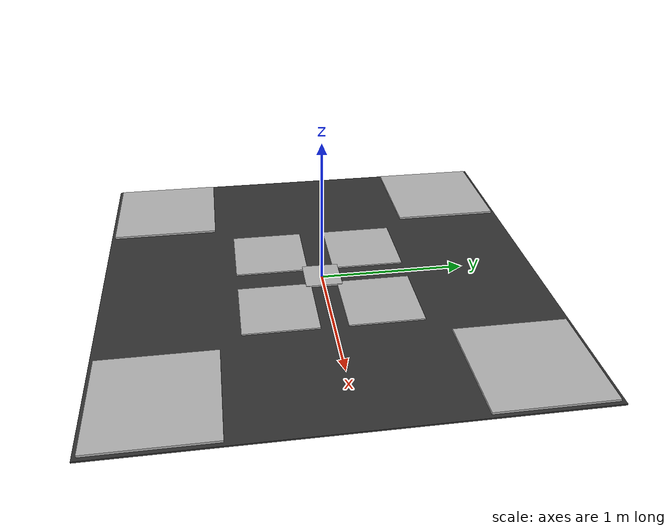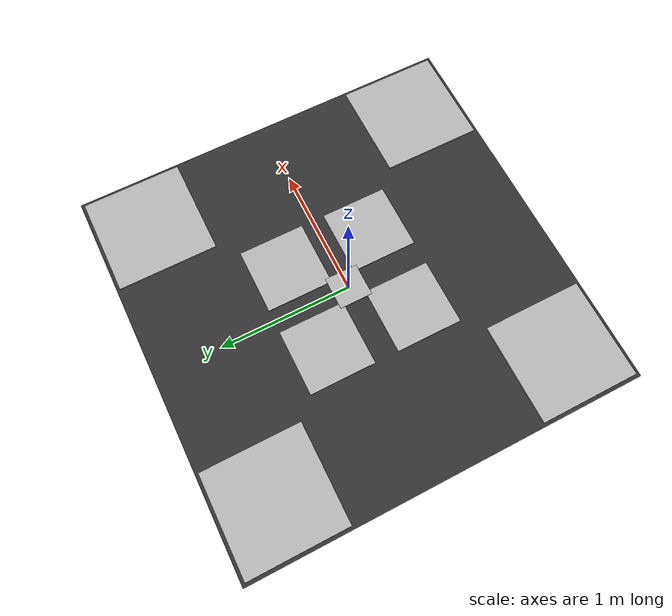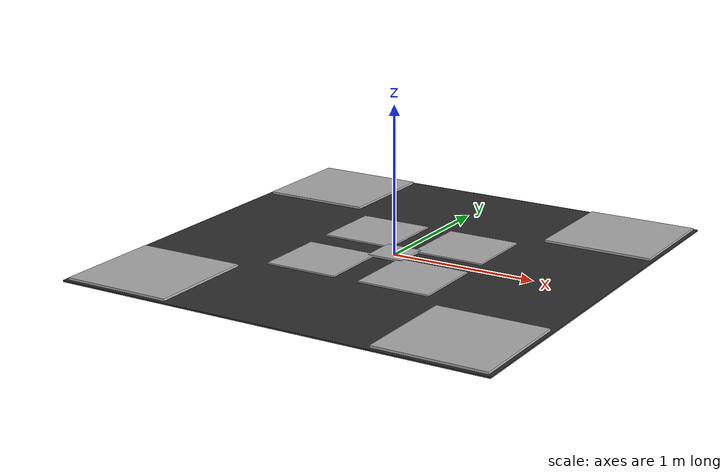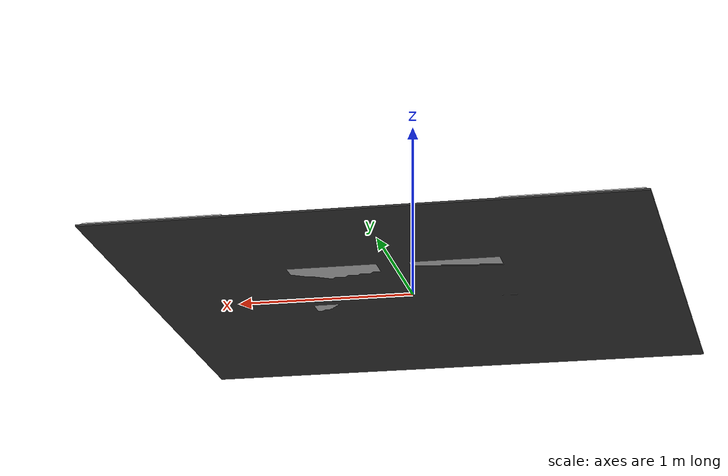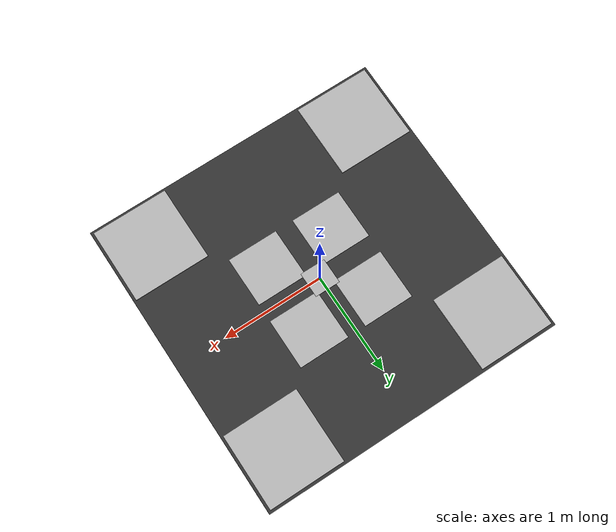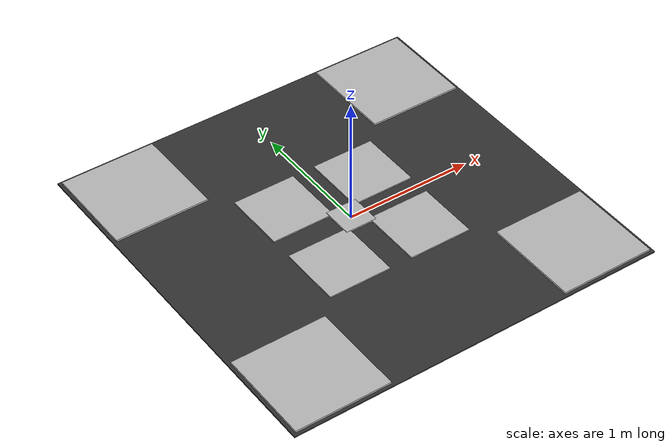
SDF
<?xml version="1.0" encoding="UTF-8"?>
<sdf version="1.9">
  <model name="aruco_pad">
    <static>true</static>
    <link name="base_link">
      <collision name="pad_collision_surface">
        <geometry>
          <box>
            <size>3.0 3.0 0.1</size>
          </box>
        </geometry>
        <surface>
          <friction>
            <ode>
              <mu>100.0</mu> <mu2>100.0</mu2> </ode>
          </friction>
          <contact>
            <ode>
              <kp>1000000.0</kp> <kd>1.0</kd> </ode>
          </contact>
        </surface>
      </collision>
      <visual name="visual_base">
        <geometry>
          <box>
            <size>3.0 3.0 0.01</size>
          </box>
        </geometry>
        <material>
          <ambient>0.2 0.2 0.2 1</ambient>
          <ambient>0.2 0.2 0.2 1</ambient>
          <diffuse>0.2 0.2 0.2 1</diffuse>
        </material>
      </visual>

      <sensor name="navsat_sensor" type="navsat">
        <always_on>1</always_on>
        <update_rate>30</update_rate>
        <noise>
            <type>gaussian</type>
            <mean>0.0</mean>
            <stddev>0.0</stddev>
          </noise>
      </sensor>
      <sensor name="imu_sensor" type="imu">
            <gz_frame_id>base_link</gz_frame_id>
            <always_on>1</always_on>
            <update_rate>250</update_rate>
            <imu>
              <angular_velocity>
                <x>
                  <noise type="gaussian">
                    <mean>0</mean>
                    <stddev>0.0003394</stddev>
                    <dynamic_bias_stddev>3.8785e-05</dynamic_bias_stddev>
                    <dynamic_bias_correlation_time>1000</dynamic_bias_correlation_time>
                  </noise>
                </x>
                <y>
                  <noise type="gaussian">
                    <mean>0</mean>
                    <stddev>0.0003394</stddev>
                    <dynamic_bias_stddev>3.8785e-05</dynamic_bias_stddev>
                    <dynamic_bias_correlation_time>1000</dynamic_bias_correlation_time>
                  </noise>
                </y>
                <z>
                  <noise type="gaussian">
                    <mean>0</mean>
                    <stddev>0.0003394</stddev>
                    <dynamic_bias_stddev>3.8785e-05</dynamic_bias_stddev>
                    <dynamic_bias_correlation_time>1000</dynamic_bias_correlation_time>
                  </noise>
                </z>
              </angular_velocity>
              <linear_acceleration>
                <x>
                  <noise type="gaussian">
                    <mean>0</mean>
                    <stddev>0.004</stddev>
                    <dynamic_bias_stddev>0.006</dynamic_bias_stddev>
                    <dynamic_bias_correlation_time>300</dynamic_bias_correlation_time>
                  </noise>
                </x>
                <y>
                  <noise type="gaussian">
                    <mean>0</mean>
                    <stddev>0.004</stddev>
                    <dynamic_bias_stddev>0.006</dynamic_bias_stddev>
                    <dynamic_bias_correlation_time>300</dynamic_bias_correlation_time>
                  </noise>
                </y>
                <z>
                  <noise type="gaussian">
                    <mean>0</mean>
                    <stddev>0.004</stddev>
                    <dynamic_bias_stddev>0.006</dynamic_bias_stddev>
                    <dynamic_bias_correlation_time>300</dynamic_bias_correlation_time>
                  </noise>
                </z>
              </linear_acceleration>
            </imu>
          </sensor>
      <sensor name="air_pressure_sensor" type="air_pressure">
        <gz_frame_id>base_link</gz_frame_id>
        <always_on>1</always_on>
        <update_rate>50</update_rate>
        <air_pressure>
          <pressure>
            <noise type="gaussian">
              <mean>0</mean>
              <stddev>0.01</stddev>
            </noise>
          </pressure>
        </air_pressure>
      </sensor>
      <sensor name="magnetometer_sensor" type="magnetometer">
        <gz_frame_id>base_link</gz_frame_id>
        <always_on>1</always_on>
        <update_rate>100</update_rate>
        <magnetometer>
          <!-- TODO: update to fix units and coordinate system when we move past Harmonic -->
          <!-- See https://github.com/gazebosim/gz-sim/pull/2460 -->
          <!-- 3mgauss RMS: NOTE: noise is in tesla but sensor reports data in gauss -->
          <!-- Noise modeled after IIS2MDC -->
          <x>
            <noise type="gaussian">
              <stddev>0.0001</stddev>
            </noise>
          </x>
          <y>
            <noise type="gaussian">
              <stddev>0.0001</stddev>
            </noise>
          </y>
          <z>
            <noise type="gaussian">
              <stddev>0.0001</stddev>
            </noise>
          </z>
        </magnetometer>
      </sensor>

    </link>
    <link name='lf_wheel_link'>
      <pose>0.15 0.16317 0.0215 0 -0 0</pose>
      <inertial>
        <pose>0 0 0 1.57079632679 0 0</pose>
        <mass>0.414</mass>
        <inertia>
          <ixx>0.00068682</ixx>
          <ixy>0</ixy>
          <ixz>0</ixz>
          <iyy>0.00068682</iyy>
          <iyz>0</iyz>
          <izz>0.00097299</izz>
        </inertia>
      </inertial>
      <velocity_decay />
    </link>
    <link name='lb_wheel_link'>
      <pose>-0.15 0.16317 0.0215 0 -0 0</pose>
      <inertial>
        <pose>0 0 0 1.57079632679 0 0</pose>
        <mass>0.414</mass>
        <inertia>
          <ixx>0.00068682</ixx>
          <ixy>0</ixy>
          <ixz>0</ixz>
          <iyy>0.00068682</iyy>
          <iyz>0</iyz>
          <izz>0.00097299</izz>
        </inertia>
      </inertial>
      <velocity_decay />
    </link>
    <link name='rf_wheel_link'>
      <pose>0.15 -0.16317 0.0215 0 -0 0</pose>
      <inertial>
        <pose>0 0 0 1.57079632679 0 0</pose>
        <mass>0.414</mass>
        <inertia>
          <ixx>0.00068682</ixx>
          <ixy>0</ixy>
          <ixz>0</ixz>
          <iyy>0.00068682</iyy>
          <iyz>0</iyz>
          <izz>0.00097299</izz>
        </inertia>
      </inertial>
      <velocity_decay />
    </link>
    <link name='rb_wheel_link'>
      <pose>-0.15 -0.16317 0.0215 0 -0 0</pose>
      <inertial>
        <pose>0 0 0 1.57079632679 0 0</pose>
        <mass>0.414</mass>
        <inertia>
          <ixx>0.00068682</ixx>
          <ixy>0</ixy>
          <ixz>0</ixz>
          <iyy>0.00068682</iyy>
          <iyz>0</iyz>
          <izz>0.00097299</izz>
        </inertia>
      </inertial>
      <velocity_decay />
    </link>
    <joint name='motor_0' type='revolute'>
      <child>lf_wheel_link</child>
      <parent>base_link</parent>
      <axis>
        <xyz>0 1 0</xyz>
        <limit>
          <lower>-1e+16</lower>
          <upper>1e+16</upper>
        </limit>
        <dynamics>
          <spring_reference>0</spring_reference>
          <spring_stiffness>0</spring_stiffness>
        </dynamics>
        <use_parent_model_frame>1</use_parent_model_frame>
      </axis>
    </joint>
    <joint name='motor_1' type='revolute'>
      <child>lb_wheel_link</child>
      <parent>base_link</parent>
      <axis>
        <xyz>0 1 0</xyz>
        <limit>
          <lower>-1e+16</lower>
          <upper>1e+16</upper>
        </limit>
        <dynamics>
          <spring_reference>0</spring_reference>
          <spring_stiffness>0</spring_stiffness>
        </dynamics>
        <use_parent_model_frame>1</use_parent_model_frame>
      </axis>
    </joint>
    <joint name='motor_2' type='revolute'>
      <child>rf_wheel_link</child>
      <parent>base_link</parent>
      <axis>
        <xyz>0 1 0</xyz>
        <limit>
          <lower>-1e+16</lower>
          <upper>1e+16</upper>
        </limit>
        <dynamics>
          <spring_reference>0</spring_reference>
          <spring_stiffness>0</spring_stiffness>
        </dynamics>
        <use_parent_model_frame>1</use_parent_model_frame>
      </axis>
    </joint>
    <joint name='motor_3' type='revolute'>
      <child>rb_wheel_link</child>
      <parent>base_link</parent>
      <axis>
        <xyz>0 1 0</xyz>
        <limit>
          <lower>-1e+16</lower>
          <upper>1e+16</upper>
        </limit>
        <dynamics>
          <spring_reference>0</spring_reference>
          <spring_stiffness>0</spring_stiffness>
        </dynamics>
        <use_parent_model_frame>1</use_parent_model_frame>
      </axis>
    </joint>

    <include>
      <uri>model://aruco_sticker1</uri>
      <name>marker_1</name>
      <pose>1.1 1.1 0.01 0 0 0</pose>
    </include>
    <include>
      <uri>model://aruco_sticker2</uri>
      <name>marker_2</name>
      <pose>1.1 -1.1 0.01 0 0 0</pose>
    </include>
    <include>
      <uri>model://aruco_sticker3</uri>
      <name>marker_3</name>
      <pose>-1.1 1.1 0.01 0 0 0</pose>
    </include>
    <include>
      <uri>model://aruco_sticker4</uri>
      <name>marker_4</name>
      <pose>-1.1 -1.1 0.01 0 0 0</pose>
    </include>

    <include>
      <uri>model://aruco_sticker5</uri>
      <name>marker_5</name>
      <pose>0.34 0.34 0.005 0 0 0</pose>
    </include>
    <include>
      <uri>model://aruco_sticker6</uri>
      <name>marker_6</name>
      <pose>0.34 -0.34 0.005 0 0 0</pose>
    </include>
    <include>
      <uri>model://aruco_sticker7</uri>
      <name>marker_7</name>
      <pose>-0.34 0.34 0.005 0 0 0</pose>
    </include>
    <include>
      <uri>model://aruco_sticker8</uri>
      <name>marker_8</name>
      <pose>-0.34 -0.34 0.005 0 0 0</pose>
    </include>

    <include>
      <uri>model://aruco_sticker9</uri>
      <name>marker_9</name>
      <pose>0 0 0.012 0 0 0</pose>
    </include>
    <!-- 1. The Sensor: Detects the touch -->
    <plugin
      filename="libtouch_plugin_mod.so"
      name="gz::sim::systems::TouchPluginMod">
      <target>x500</target>
      <namespace>pad</namespace>
      <link_name>base_link</link_name>
      <time>0.1</time>
      <enabled>true</enabled>
      <create_contact_sensor_for_collision>true</create_contact_sensor_for_collision>
    </plugin>

    <!-- 2. The Magnet: Creates the joint -->
    <plugin
      filename="libdetachable_joint_mod.so"
      name="gz::sim::systems::DetachableJointMod">
      <parent_link>base_link</parent_link>
      <child_model>x500_mono_cam_down_0</child_model>
      <child_link>base_link</child_link>
      <attach_topic>/pad/touched</attach_topic>
      <topic>/pad/dettach</topic>
      <detach_topic>/pad/dettach</detach_topic>
    </plugin>

   <plugin
        filename="libwave_motion_plugin2.so"
        name="gz::sim::systems::WavePlatformPlugin2">

        <surge_a1>1.0</surge_a1>
        <surge_p1>12.0</surge_p1>

        <heave_a1>0.5</heave_a1>
        <heave_p1>30</heave_p1>

        <heave_a2>0.2</heave_a2>
        <heave_p2>10.0</heave_p2>

        <heave_a3>1.0</heave_a3>
        <heave_p3>4.0</heave_p3>

        <roll_a1>11.0</roll_a1>
        <pitch_a1>3.1</pitch_a1>
        <yaw_a1>2.14</yaw_a1>

      </plugin>

    <plugin filename="gz-sim-joint-controller-system" name="gz::sim::systems::JointController">
      <joint_name>motor_0</joint_name>
      <sub_topic>command/motor_speed</sub_topic>
      <use_actuator_msg>true</use_actuator_msg>
      <actuator_number>1</actuator_number>
      <p_gain>10.0</p_gain>
    </plugin>
    <plugin filename="gz-sim-joint-controller-system" name="gz::sim::systems::JointController">
      <joint_name>motor_1</joint_name>
      <sub_topic>command/motor_speed</sub_topic>
      <use_actuator_msg>true</use_actuator_msg>
      <actuator_number>1</actuator_number>
      <p_gain>10.0</p_gain>
    </plugin>
    <plugin filename="gz-sim-joint-controller-system" name="gz::sim::systems::JointController">
      <joint_name>motor_2</joint_name>
      <sub_topic>command/motor_speed</sub_topic>
      <use_actuator_msg>true</use_actuator_msg>
      <actuator_number>0</actuator_number>
      <p_gain>10.0</p_gain>
    </plugin>
    <plugin filename="gz-sim-joint-controller-system" name="gz::sim::systems::JointController">
      <joint_name>motor_3</joint_name>
      <sub_topic>command/motor_speed</sub_topic>
      <use_actuator_msg>true</use_actuator_msg>
      <actuator_number>0</actuator_number>
      <p_gain>10.0</p_gain>
    </plugin>
    <plugin
      filename="gz-sim-joint-state-publisher-system"
      name="gz::sim::systems::JointStatePublisher">
      <joint_name>motor_0</joint_name>
      <joint_name>motor_1</joint_name>
      <joint_name>motor_2</joint_name>
      <joint_name>motor_3</joint_name>
    </plugin>

  </model>
</sdf>

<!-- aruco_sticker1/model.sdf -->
<sdf version="1.5">

 <model name='aruco_sticker1'>
      <pose>0 0 0 0 0 0</pose>
      <link name='link'>
        <inertial>
          <mass>1</mass>
          <inertia>
            <ixx>0.166667</ixx>
            <ixy>0</ixy>
            <ixz>0</ixz>
            <iyy>0.166667</iyy>
            <iyz>0</iyz>
            <izz>0.0166667</izz>
          </inertia>
          <pose>0 0 0 0 -0 0</pose>
        </inertial>
        <gravity>0</gravity>
        <kinematic>true</kinematic>
        <visual name='aruco_box_mesh'>
          <geometry>
            <mesh>
                <uri>model://aruco_sticker1/model.dae</uri>
                <scale>0.375 0.375 0.01</scale>
            </mesh>
          </geometry>
        </visual>
        <self_collide>0</self_collide>
        <enable_wind>0</enable_wind>
        <kinematic>0</kinematic>
      </link>
    </model>
</sdf>

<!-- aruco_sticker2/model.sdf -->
<sdf version="1.5">

 <model name='aruco_sticker2'>
      <pose>0 0 0 0 0 0</pose>
      <link name='link'>
        <inertial>
          <mass>1</mass>
          <inertia>
            <ixx>0.166667</ixx>
            <ixy>0</ixy>
            <ixz>0</ixz>
            <iyy>0.166667</iyy>
            <iyz>0</iyz>
            <izz>0.0166667</izz>
          </inertia>
          <pose>0 0 0 0 -0 0</pose>
        </inertial>
        <gravity>0</gravity>
        <kinematic>true</kinematic>
        <visual name='aruco_box_mesh'>
          <geometry>
            <mesh>
                <uri>model://aruco_sticker2/model.dae</uri>
                <scale>0.375 0.375 0.01</scale>
            </mesh>
          </geometry>
        </visual>
        <self_collide>0</self_collide>
        <enable_wind>0</enable_wind>
        <kinematic>0</kinematic>
      </link>
    </model>
</sdf>

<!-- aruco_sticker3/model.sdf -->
<sdf version="1.5">

 <model name='aruco_sticker3'>
      <pose>0 0 0 0 0 0</pose>
      <link name='link'>
        <inertial>
          <mass>1</mass>
          <inertia>
            <ixx>0.166667</ixx>
            <ixy>0</ixy>
            <ixz>0</ixz>
            <iyy>0.166667</iyy>
            <iyz>0</iyz>
            <izz>0.0166667</izz>
          </inertia>
          <pose>0 0 0 0 -0 0</pose>
        </inertial>
        <gravity>0</gravity>
        <kinematic>true</kinematic>
        <visual name='aruco_box_mesh'>
          <geometry>
            <mesh>
                <uri>model://aruco_sticker3/model.dae</uri>
                <scale>0.375 0.375 0.01</scale>
            </mesh>
          </geometry>
        </visual>
        <self_collide>0</self_collide>
        <enable_wind>0</enable_wind>
        <kinematic>0</kinematic>
      </link>
    </model>
</sdf>

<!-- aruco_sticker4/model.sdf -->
<sdf version="1.5">

 <model name='aruco_sticker4'>
      <pose>0 0 0 0 0 0</pose>
      <link name='link'>
        <inertial>
          <mass>1</mass>
          <inertia>
            <ixx>0.166667</ixx>
            <ixy>0</ixy>
            <ixz>0</ixz>
            <iyy>0.166667</iyy>
            <iyz>0</iyz>
            <izz>0.0166667</izz>
          </inertia>
          <pose>0 0 0 0 -0 0</pose>
        </inertial>
        <gravity>0</gravity>
        <kinematic>true</kinematic>
        <visual name='aruco_box_mesh'>
          <geometry>
            <mesh>
                <uri>model://aruco_sticker4/model.dae</uri>
                <scale>0.375 0.375 0.01</scale>
            </mesh>
          </geometry>
        </visual>
        <self_collide>0</self_collide>
        <enable_wind>0</enable_wind>
        <kinematic>0</kinematic>
      </link>
    </model>
</sdf>

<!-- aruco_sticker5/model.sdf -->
<sdf version="1.5">

 <model name='aruco_sticker5'>
      <pose>0 0 0 0 0 0</pose>
      <link name='link'>
        <inertial>
          <mass>1</mass>
          <inertia>
            <ixx>0.166667</ixx>
            <ixy>0</ixy>
            <ixz>0</ixz>
            <iyy>0.166667</iyy>
            <iyz>0</iyz>
            <izz>0.0166667</izz>
          </inertia>
          <pose>0 0 0 0 -0 0</pose>
        </inertial>
        <gravity>0</gravity>
        <kinematic>true</kinematic>
        <visual name='aruco_box_mesh'>
          <geometry>
            <mesh>
                <uri>model://aruco_sticker5/model.dae</uri>
                <scale>0.25 0.25 0.01</scale>
            </mesh>
          </geometry>
        </visual>
        <self_collide>0</self_collide>
        <enable_wind>0</enable_wind>
        <kinematic>0</kinematic>
      </link>
    </model>
</sdf>

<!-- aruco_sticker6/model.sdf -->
<sdf version="1.5">

 <model name='aruco_sticker6'>
      <pose>0 0 0 0 0 0</pose>
      <link name='link'>
        <inertial>
          <mass>1</mass>
          <inertia>
            <ixx>0.166667</ixx>
            <ixy>0</ixy>
            <ixz>0</ixz>
            <iyy>0.166667</iyy>
            <iyz>0</iyz>
            <izz>0.0166667</izz>
          </inertia>
          <pose>0 0 0 0 -0 0</pose>
        </inertial>
        <gravity>0</gravity>
        <kinematic>true</kinematic>
        <visual name='aruco_box_mesh'>
          <geometry>
            <mesh>
                <uri>model://aruco_sticker6/model.dae</uri>
                <scale>0.25 0.25 0.01</scale>
            </mesh>
          </geometry>
        </visual>
        <self_collide>0</self_collide>
        <enable_wind>0</enable_wind>
        <kinematic>0</kinematic>
      </link>
    </model>
</sdf>

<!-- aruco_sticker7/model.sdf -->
<sdf version="1.5">

 <model name='aruco_sticker7'>
      <pose>0 0 0 0 0 0</pose>
      <link name='link'>
        <inertial>
          <mass>1</mass>
          <inertia>
            <ixx>0.166667</ixx>
            <ixy>0</ixy>
            <ixz>0</ixz>
            <iyy>0.166667</iyy>
            <iyz>0</iyz>
            <izz>0.0166667</izz>
          </inertia>
          <pose>0 0 0 0 -0 0</pose>
        </inertial>
        <gravity>0</gravity>
        <kinematic>true</kinematic>
        <visual name='aruco_box_mesh'>
          <geometry>
            <mesh>
                <uri>model://aruco_sticker7/model.dae</uri>
                <scale>0.25 0.25 0.01</scale>
            </mesh>
          </geometry>
        </visual>
        <self_collide>0</self_collide>
        <enable_wind>0</enable_wind>
        <kinematic>0</kinematic>
      </link>
    </model>
</sdf>

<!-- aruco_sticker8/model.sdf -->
<sdf version="1.5">

 <model name='aruco_sticker8'>
      <pose>0 0 0 0 0 0</pose>
      <link name='link'>
        <inertial>
          <mass>1</mass>
          <inertia>
            <ixx>0.166667</ixx>
            <ixy>0</ixy>
            <ixz>0</ixz>
            <iyy>0.166667</iyy>
            <iyz>0</iyz>
            <izz>0.0166667</izz>
          </inertia>
          <pose>0 0 0 0 -0 0</pose>
        </inertial>
        <gravity>0</gravity>
        <kinematic>true</kinematic>
        <visual name='aruco_box_mesh'>
          <geometry>
            <mesh>
                <uri>model://aruco_sticker8/model.dae</uri>
                <scale>0.25 0.25 0.01</scale>
            </mesh>
          </geometry>
        </visual>
        <self_collide>0</self_collide>
        <enable_wind>0</enable_wind>
        <kinematic>0</kinematic>
      </link>
    </model>
</sdf>

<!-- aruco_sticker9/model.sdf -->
<sdf version="1.5">

 <model name='aruco_sticker9'>
      <pose>0 0 0 0 0 0</pose>
      <link name='link'>
        <inertial>
          <mass>1</mass>
          <inertia>
            <ixx>0.166667</ixx>
            <ixy>0</ixy>
            <ixz>0</ixz>
            <iyy>0.166667</iyy>
            <iyz>0</iyz>
            <izz>0.0166667</izz>
          </inertia>
          <pose>0 0 0 0 -0 0</pose>
        </inertial>
        <gravity>0</gravity>
        <kinematic>true</kinematic>
        <visual name='aruco_box_mesh'>
          <geometry>
            <mesh>
                <uri>model://aruco_sticker9/model.dae</uri>
                <scale>0.125 0.125 0.00625</scale>
            </mesh>
          </geometry>
        </visual>
        <self_collide>0</self_collide>
        <enable_wind>0</enable_wind>
        <kinematic>0</kinematic>
      </link>
    </model>
</sdf>
